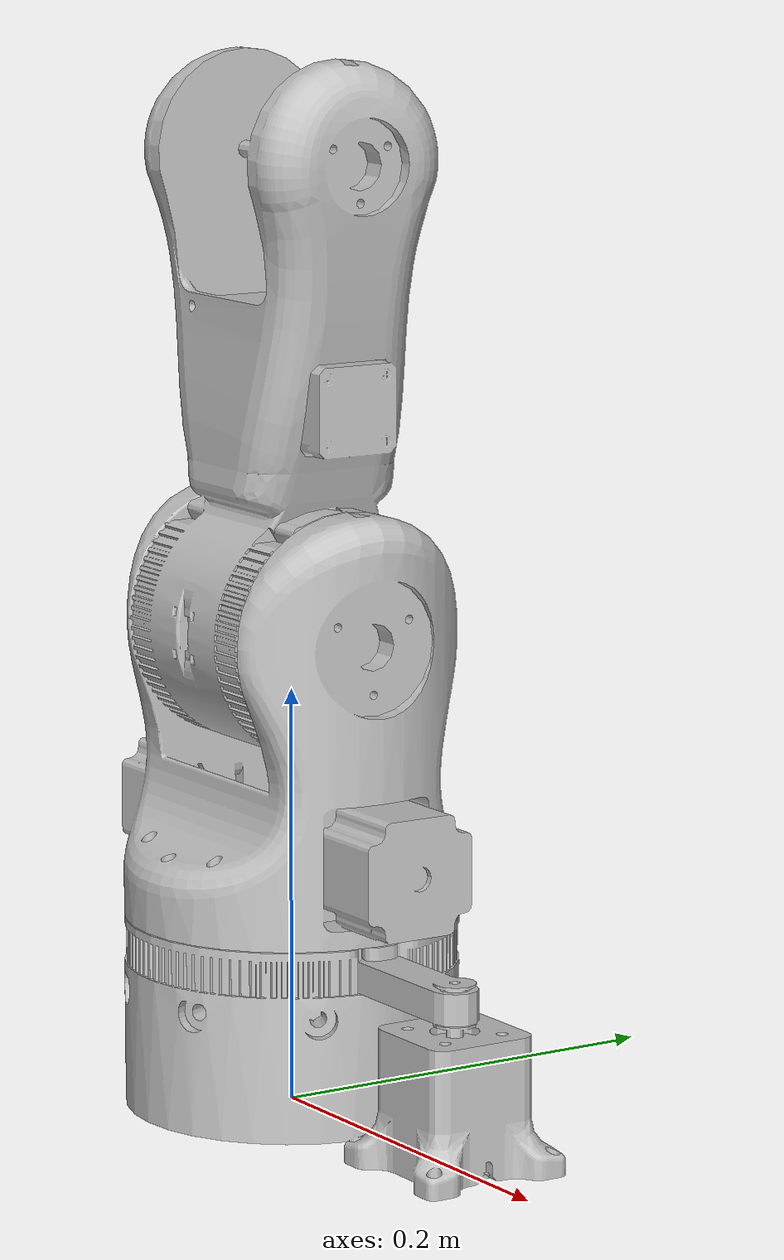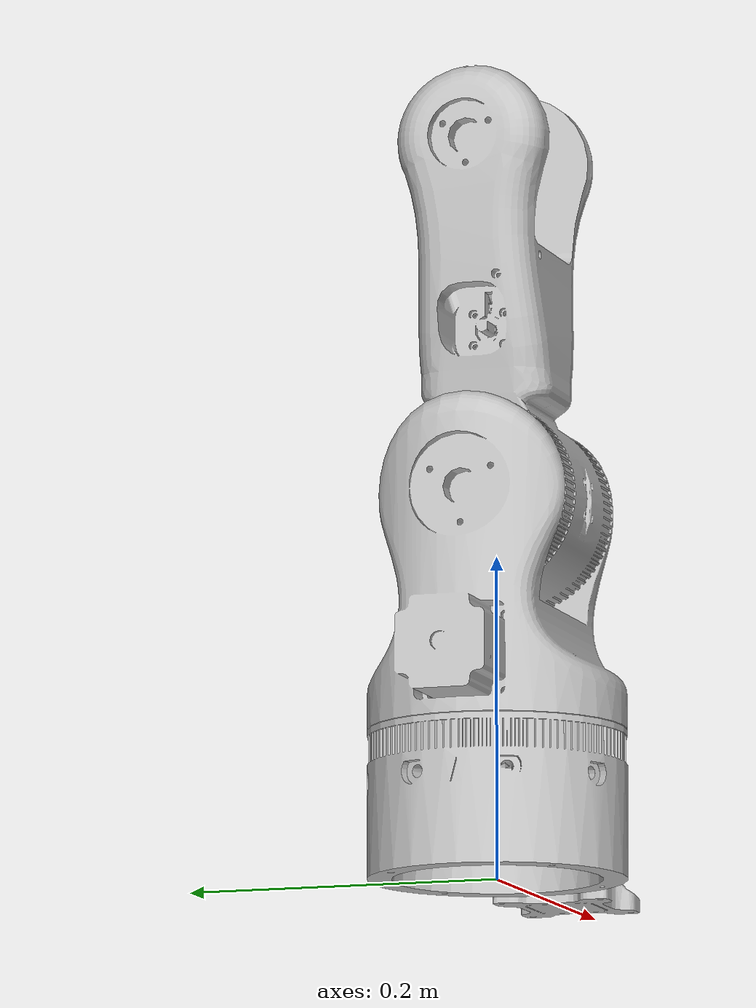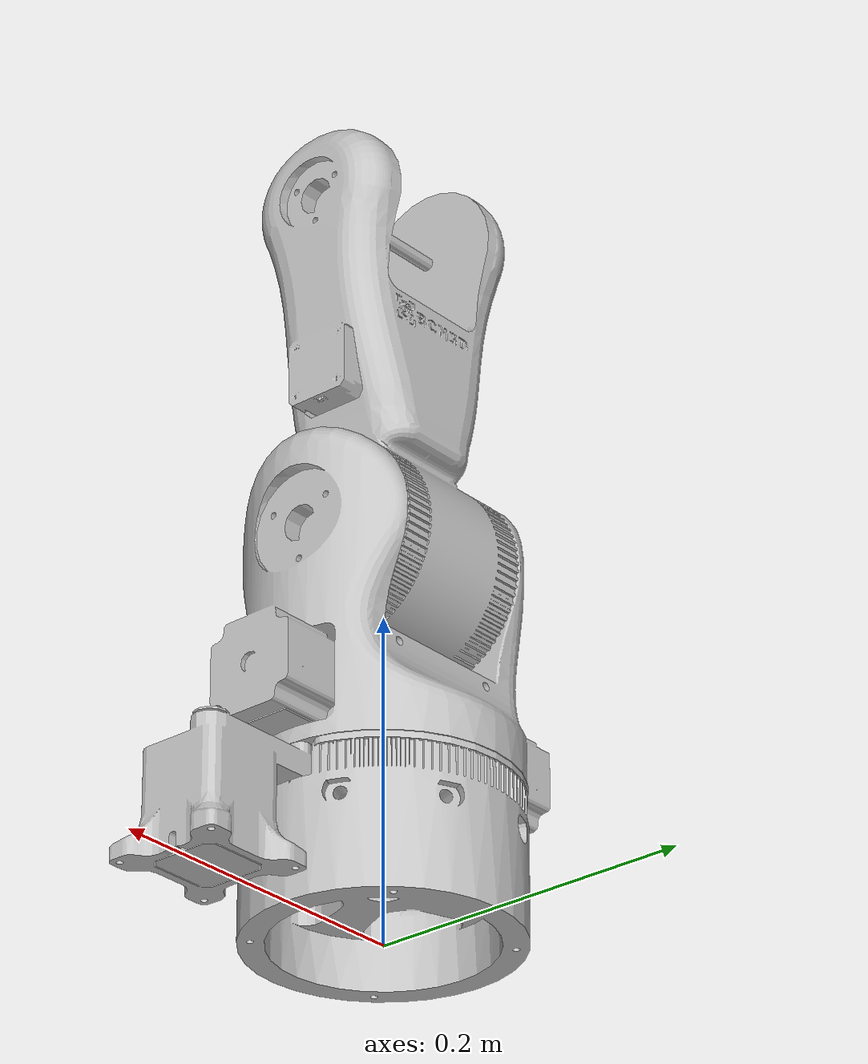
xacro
<?xml version="1.0"?>
<robot xmlns:xacro="http://www.ros.org/wiki/xacro" name="moveo">
    <xacro:arg name="initial_positions_file" default="initial_positions.yaml" />

    <!-- Import moveo_urdf urdf file -->
    <xacro:include filename="$(find iteration_5)/urdf/moveo.urdf" />

    <!-- Import control_xacro -->
    <xacro:include filename="$(find iteration_5)/urdf/moveo.ros2_control.xacro" />

</robot>

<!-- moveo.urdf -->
<robot
  name="moveo">

    <link name="world"/>

  <joint name="fixed" type="fixed">
    <parent link="world"/>
    <child link="base_link"/>
  </joint>

  <!-- BASE LINK -->
  <link
    name="base_link">

    <inertial>
      <origin
        xyz="0.005 0.065 0.003"
        rpy="0 0 0" />
      <mass
        value="5.0" />
      <inertia
        ixx="0.142"
	ixy="0.002"
	ixz="1.0E-09"
	iyy="0.139"
	iyz="0.004"
	izz="0.273"/>

    </inertial>

    <visual>
      <origin
        xyz="0 0 0"
        rpy="0 0 0" />
      <geometry>
        <mesh
          filename="package://iteration_3/meshes/base_link.stl" />
      </geometry>
      <material
        name="">
        <color
          rgba="0.75294 0.75294 0.75294 1" />
      </material>
    </visual>

    <collision>
      <origin
        xyz="0 0 0"
        rpy="0 0 0" />
      <geometry>
        <mesh
          filename="package://iteration_3/meshes/base_link.stl" />
      </geometry>
    </collision>
  </link>

  <!--   LINK 1   -->

  <link
    name="Link_1">
    <inertial>
      <origin
        xyz="-1.184E-05 -8.007E-06 0.161"
        rpy="0 0 0" />
      <mass
        value="3" />
      <inertia
        ixx="0.007"
	ixy="4.973E-09"
	ixz="1.485E-06"
	iyy="0.011"
	iyz="1.0E-09"
	izz="0.008" />
    </inertial>

    <visual>
      <origin
        xyz="0 0 0"
        rpy="0 0 0" />
      <geometry>
        <mesh
          filename="package://iteration_3/meshes/Link_1.stl" />
      </geometry>
      <material
        name="">
        <color
          rgba="0.75294 0.75294 0.75294 1" />
      </material>
    </visual>

    <collision>
      <origin
        xyz="0 0 0"
        rpy="0 0 0" />
      <geometry>
        <mesh
          filename="package://iteration_3/meshes/Link_1.stl" />
      </geometry>
    </collision>
  </link>

  <joint
    name="Joint_1"
    type="revolute">
    <origin
      xyz="0 0 0.092"
      rpy="0 0 0" />
    <parent
      link="base_link" />
    <child
      link="Link_1" />
    <axis
      xyz="0 0 1" />
    <limit
      lower="-1.5707"
      upper="1.5707"
      effort="5.0"
      velocity="1.0" />
  </joint>

  <!--   LINK 2   -->

  <link
    name="Link_2">
    <inertial>
      <origin
        xyz="0.002 -5.960E-05 0.31"
        rpy="0 0 0" />
      <mass
        value="2.5" />
      <inertia
        ixx="0.017"
	ixy="1.0E-09"
	ixz="1.0E-09"
	iyy="0.018"
	iyz="1.108E-05"
	izz="0.004" />
    </inertial>
    <visual>
      <origin
        xyz="0 0 0"
        rpy="0 0 0" />
      <geometry>
        <mesh
          filename="package://iteration_3/meshes/Link_2.stl" />
      </geometry>
      <material
        name="">
        <color
          rgba="0.75294 0.75294 0.75294 1" />
      </material>
    </visual>
    <collision>
      <origin
        xyz="0 0 0"
        rpy="0 0 0" />
      <geometry>
        <mesh
          filename="package://iteration_3/meshes/Link_2.stl" />
      </geometry>
    </collision>
  </link>

  <joint
    name="Joint_2"
    type="revolute">
    <origin
      xyz="0 0 0.14"
      rpy="0 0 0" />
    <parent
      link="Link_1" />
    <child
      link="Link_2" />
    <axis
      xyz="-1 0 0" />
    <limit
      lower="-1.700"
      upper="1.700"
      effort="5.0"
      velocity="1.0" />
  </joint>

</robot>
